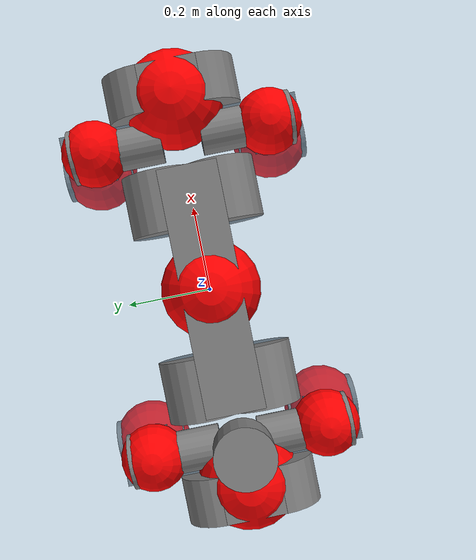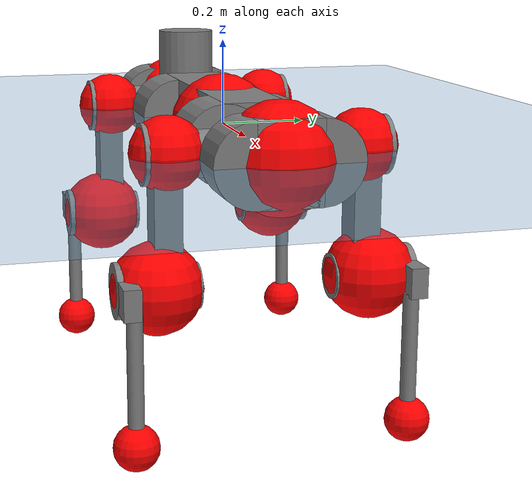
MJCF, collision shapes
<mujoco model="anymal_c">
  <compiler angle="radian" assetdir="assets" balanceinertia="true" inertiafromgeom="false"/>

  <option timestep="0.005" density="1.2" viscosity="2e-05"/>

  <size nkey="1"/>

  <visual>
    <quality shadowsize="8192"/>
    <map shadowclip="0.5"/>
  </visual>

  <default>
    <default class="/">
      <material specular="0" shininess="0.25"/>
      <geom contype="0" conaffinity="0" group="1" solref="-1000 -80"/>
      <site size="0.01 0.005 0.005" group="5"/>
      <general forcelimited="true" forcerange="-80 80" biastype="affine" gainprm="80" biasprm="0 -80 -2"/>
      <default class="anymal_c">
        <joint armature="0.01" damping="0.01" frictionloss="0.1"/>
        <default class="visual">
          <geom type="mesh" group="2"/>
          <default class="visual_zflip"/>
        </default>
        <default class="collision">
          <geom type="cylinder" group="3"/>
          <default class="foot">
            <geom size="0.03 0 0" type="sphere" condim="6" priority="1" friction="0.8 0.02 0.01" solimp="0.015 1 0.03"/>
          </default>
        </default>
      </default>
      <default class="reward_collision_sphere">
        <geom group="5" rgba="1 0 0 1"/>
      </default>
    </default>
  </default>

  <asset>
    <texture type="skybox" colorspace="auto" name="//unnamed_texture_0" builtin="gradient" rgb1="0.95 0.95 0.95" rgb2="0.95 0.95 0.95" width="100" height="600"/>
    <texture type="2d" colorspace="auto" name="texplane" builtin="checker" rgb1="0.345 0.575 0.748" rgb2="0.345 0.575 0.748" markrgb="1 1 1" width="512" height="512"/>
    <texture type="2d" colorspace="linear" name="base" file="base.png"/>
    <texture type="2d" colorspace="linear" name="top_shell" file="top_shell.png"/>
    <texture type="2d" colorspace="linear" name="bottom_shell" file="bottom_shell.png"/>
    <texture type="2d" colorspace="linear" name="remote" file="remote.png"/>
    <texture type="2d" colorspace="linear" name="hatch" file="hatch.png"/>
    <texture type="2d" colorspace="linear" name="handle" file="handle.png"/>
    <texture type="2d" colorspace="linear" name="face" file="face.png"/>
    <texture type="2d" colorspace="linear" name="battery" file="battery.png"/>
    <texture type="2d" colorspace="linear" name="lidar_cage" file="lidar_cage.png"/>
    <texture type="2d" colorspace="linear" name="depth_camera" file="depth_camera.png"/>
    <texture type="2d" colorspace="linear" name="wide_angle_camera" file="wide_angle_camera.png"/>
    <texture type="2d" colorspace="linear" name="lidar" file="lidar.png"/>
    <texture type="2d" colorspace="linear" name="drive" file="drive.png"/>
    <texture type="2d" colorspace="linear" name="hip_l" file="hip_l.png"/>
    <texture type="2d" colorspace="linear" name="shank_l" file="shank_l.png"/>
    <texture type="2d" colorspace="linear" name="foot" file="foot.png"/>
    <texture type="2d" colorspace="linear" name="thigh" file="thigh.png"/>
    <texture type="2d" colorspace="linear" name="shank_r" file="shank_r.png"/>
    <texture type="2d" colorspace="linear" name="hip_r" file="hip_r.png"/>
    <material name="MatPlane" class="/" texture="texplane" texuniform="true" texrepeat="2 2" specular="0.9" shininess="0.5"/>
    <material name="black_plastic" class="/" rgba="0.007 0.007 0.007 1"/>
    <material name="green" class="/" rgba="0.052 0.178 0.033 1"/>
    <material name="red" class="/" rgba="0.178 0.006 0.005 1"/>
    <material name="yellow" class="/" rgba="0.178 0.119 0.006 1"/>
    <material name="lwl" class="/" rgba="0.8 0.8 0.8 1"/>
    <material name="base" class="/" texture="base"/>
    <material name="top_shell" class="/" texture="top_shell"/>
    <material name="bottom_shell" class="/" texture="bottom_shell"/>
    <material name="hip_l" class="/" texture="hip_l"/>
    <material name="thigh" class="/" texture="thigh"/>
    <material name="shank_l" class="/" texture="shank_l"/>
    <material name="foot" class="/" texture="foot"/>
    <material name="hip_r" class="/" texture="hip_r"/>
    <material name="shank" class="/" texture="shank_r"/>
    <material name="hatch" class="/" texture="hatch"/>
    <material name="remote" class="/" texture="remote"/>
    <material name="handle" class="/" texture="handle"/>
    <material name="face" class="/" texture="face"/>
    <material name="depth_camera" class="/" texture="depth_camera"/>
    <material name="wide_angle_camera" class="/" texture="wide_angle_camera"/>
    <material name="battery" class="/" texture="battery"/>
    <material name="lidar_cage" class="/" texture="lidar_cage"/>
    <material name="lidar" class="/" texture="lidar"/>
    <material name="drive" class="/" texture="drive"/>
    <mesh name="base_0" class="/" file="base_0.obj"/>
    <mesh name="base_1" class="/" file="base_1.obj"/>
    <mesh name="base_2" class="/" file="base_2.obj"/>
    <mesh name="base_3" class="/" file="base_3.obj"/>
    <mesh name="base_4" class="/" file="base_4.obj"/>
    <mesh name="base_5" class="/" file="base_5.obj"/>
    <mesh name="top_shell" class="/" file="top_shell.obj"/>
    <mesh name="bottom_shell" class="/" file="bottom_shell.obj"/>
    <mesh name="remote" class="/" file="remote.obj"/>
    <mesh name="handle" class="/" file="handle.obj"/>
    <mesh name="face" class="/" file="face.obj"/>
    <mesh name="wide_angle_camera" class="/" file="wide_angle_camera.obj"/>
    <mesh name="depth_camera" class="/" file="depth_camera.obj"/>
    <mesh name="battery" class="/" file="battery.obj"/>
    <mesh name="lidar_cage" class="/" file="lidar_cage.obj"/>
    <mesh name="lidar" class="/" file="lidar.obj"/>
    <mesh name="drive" class="/" file="drive.obj"/>
    <mesh name="hip_l" class="/" file="hip_l.obj"/>
    <mesh name="thigh" class="/" file="thigh.obj"/>
    <mesh name="shank_l" class="/" file="shank_l.obj"/>
    <mesh name="foot" class="/" file="foot.obj"/>
    <mesh name="hip_r" class="/" file="hip_r.obj"/>
    <mesh name="hatch" class="/" file="hatch.obj"/>
    <mesh name="shank_r" class="/" file="shank_r.obj"/>
  </asset>

  <worldbody>
    <geom name="floor" class="/" size="100 100 0.125" type="plane" group="0" material="MatPlane"/>
    <light name="toplight_shadow" class="/" pos="0 0 5" dir="0.0990148 0.0990148 -0.990148" type="directional" ambient="0.04 0.04 0.04" diffuse="0.55 0.55 0.55" specular="0.12 0.12 0.12"/>
    <light name="toplight_fill" class="/" pos="0 0 5" dir="0.0990148 0.0990148 -0.990148" type="directional" castshadow="false" ambient="0.04 0.04 0.04" diffuse="0.3 0.3 0.3" specular="0.08 0.08 0.08"/>
    <body name="trunk" childclass="anymal_c" pos="-0.000309613 -0.00281909 -0.000871543" quat="0.999999 -0.000320766 -0.00137196 -8.78943e-05">
      <inertial pos="-0.000288691 -0.00158308 0.0523774" quat="0.490123 0.502035 0.507565 0.500117" mass="20.3799" diaginertia="0.73952 0.61044 0.236108"/>
      <joint name="//unnamed_joint_0" type="free" armature="0" damping="0" frictionloss="0"/>
      <geom name="//unnamed_geom_1" class="visual" material="green" mesh="base_0"/>
      <geom name="//unnamed_geom_2" class="visual" material="yellow" mesh="base_1"/>
      <geom name="//unnamed_geom_3" class="visual" material="red" mesh="base_2"/>
      <geom name="//unnamed_geom_4" class="visual" material="black_plastic" mesh="base_3"/>
      <geom name="//unnamed_geom_5" class="visual" material="lwl" mesh="base_4"/>
      <geom name="//unnamed_geom_6" class="visual" material="base" mesh="base_5"/>
      <geom name="trunk_1" class="collision" size="0.294399 0.0710617 0.0913651" type="box"/>
      <geom name="trunk_2" class="collision" size="0.0913651 0.0735997" pos="0.22555 0.0696484 0" quat="0.707107 0 0.707107 0"/>
      <geom name="trunk_3" class="collision" size="0.0913651 0.0735997" pos="-0.22555 0.0696484 0" quat="0.707107 0 0.707107 0"/>
      <geom name="trunk_4" class="collision" size="0.0913651 0.0735997" pos="0.22555 -0.0696484 0" quat="0.707107 0 0.707107 0"/>
      <geom name="trunk_5" class="collision" size="0.0913651 0.0735997" pos="-0.22555 -0.0696484 0" quat="0.707107 0 0.707107 0"/>
      <geom name="//unnamed_geom_12" class="visual" material="top_shell" mesh="top_shell"/>
      <geom name="//unnamed_geom_13" class="visual" material="bottom_shell" mesh="bottom_shell"/>
      <geom name="//unnamed_geom_14" class="visual" material="remote" mesh="remote"/>
      <geom name="//unnamed_geom_15" class="visual" material="handle" mesh="handle"/>
      <geom name="//unnamed_geom_16" class="visual" pos="0.429841 0 0" quat="1 0 0 0" material="face" mesh="face"/>
      <geom name="trunk_6" class="collision" size="0.0558342 0.0710617 0.0913651" pos="0.486877 0 0" type="box"/>
      <geom name="//unnamed_geom_18" class="collision" size="0.0913651 0.0558342" pos="0.486877 0.0696484 0" quat="0.707107 0 0.707107 0"/>
      <geom name="//unnamed_geom_19" class="collision" size="0.0913651 0.0558342" pos="0.486877 -0.0696484 0" quat="0.707107 0 0.707107 0"/>
      <geom name="//unnamed_geom_20" class="visual" pos="0.478735 0 -0.029416" quat="0.965926 0 0.258819 0" material="depth_camera" mesh="depth_camera"/>
      <geom name="//unnamed_geom_21" class="visual" pos="0.531987 0 0.0151723" material="wide_angle_camera" mesh="wide_angle_camera"/>
      <geom name="//unnamed_geom_22" class="visual_zflip" pos="-0.429841 0 0" quat="0 0 0 1" material="face" mesh="face"/>
      <geom name="trunk_7" class="collision" size="0.0558342 0.0710617 0.0913651" pos="-0.486877 0 0" quat="0 0 0 1" type="box"/>
      <geom name="//unnamed_geom_24" class="collision" size="0.0913651 0.0558342" pos="-0.486877 -0.0696484 0" quat="0 -0.707107 0 0.707107"/>
      <geom name="//unnamed_geom_25" class="collision" size="0.0913651 0.0558342" pos="-0.486877 0.0696484 0" quat="0 -0.707107 0 0.707107"/>
      <geom name="//unnamed_geom_26" class="visual" pos="-0.478735 0 -0.029416" quat="0 -0.258819 0 0.965926" material="depth_camera" mesh="depth_camera"/>
      <geom name="//unnamed_geom_27" class="visual_zflip" pos="-0.531987 0 0.0151723" quat="0 0 0 1" material="wide_angle_camera" mesh="wide_angle_camera"/>
      <geom name="//unnamed_geom_28" class="visual" material="battery" mesh="battery"/>
      <geom name="//unnamed_geom_29" class="visual" pos="0 0.0755234 0.0296212" quat="0.683013 -0.183013 0.183013 0.683013" material="depth_camera" mesh="depth_camera"/>
      <geom name="//unnamed_geom_30" class="visual" pos="0 -0.0755234 0.0296212" quat="0.683013 0.183013 0.183013 -0.683013" material="depth_camera" mesh="depth_camera"/>
      <geom name="//unnamed_geom_31" class="visual" pos="-0.377472 0 0.0744933" quat="1 0 0 0" material="lidar_cage" mesh="lidar_cage"/>
      <geom name="trunk_8" class="collision" size="0.0710617 0.0609101" pos="-0.377472 0 0.135304"/>
      <geom name="//unnamed_geom_33" class="visual" pos="-0.377472 -1.65143e-05 0.144122" quat="0.707107 0 0 -0.707107" material="lidar" mesh="lidar"/>
      <geom name="//unnamed_geom_34" class="visual" pos="0.311 0.103484 -3.19774e-10" quat="0.258819 0.965926 0 0" material="drive" mesh="drive"/>
      <geom name="//unnamed_geom_35" class="visual" pos="0.311 -0.103484 3.19774e-10" quat="0.258819 -0.965926 0 0" material="drive" mesh="drive"/>
      <geom name="//unnamed_geom_36" class="visual" pos="-0.311 0.103484 3.19774e-10" quat="0 0 0.965926 -0.258819" material="drive" mesh="drive"/>
      <geom name="//unnamed_geom_37" class="visual" pos="-0.311 -0.103484 -3.19774e-10" quat="0 0 -0.965926 -0.258819" material="drive" mesh="drive"/>
      <geom name="//unnamed_geom_38" class="visual" pos="0.120293 0 0.0739866" quat="1 0 0 0" material="hatch" mesh="hatch"/>
      <geom name="//unnamed_geom_39" class="reward_collision_sphere" size="0.12182"/>
      <geom name="//unnamed_geom_40" class="reward_collision_sphere" size="0.12182" pos="0.466655 0 0"/>
      <geom name="//unnamed_geom_41" class="reward_collision_sphere" size="0.12182" pos="-0.466655 0 0"/>
      <site name="imu" pos="0.263301 0.00441149 0.0430719" size="0.0101517"/>
      <camera name="track" pos="0 -1.98995 0" quat="0.707107 0.707107 0 0" mode="trackcom"/>
      <camera name="ego_camera" pos="0.466655 0 -0.0405406" quat="-0.5 -0.5 0.5 0.5"/>
      <body name="LF_HIP" pos="0.310177 0.103958 0.00136586" quat="0.258465 0.966021 0.00039848 -0.000158565">
        <inertial pos="0.0587128 -0.0176647 -0.0078867" quat="-0.12699 0.713144 -0.134286 0.676215" mass="2.89727" diaginertia="0.00707616 0.00465218 0.00353364"/>
        <joint name="LF_HAA" pos="0 0 0" axis="0.999943 -0.00717051 -0.00791597" stiffness="0.0064939" range="-0.76724 0.500515" armature="0.0104054" damping="0.00695841" frictionloss="0.0988841"/>
        <geom name="//unnamed_geom_42" class="visual" pos="0 -1.88109e-05 3.08967e-06" quat="0.258819 -0.965926 0 0" material="hip_l" mesh="hip_l"/>
        <geom name="//unnamed_geom_43" class="visual" pos="0.062117 -0.0747211 -0.0432774" quat="0.183013 -0.683013 0.683013 0.183013" material="drive" mesh="drive"/>
        <geom name="//unnamed_geom_44" class="collision" size="0.0507584 0.0710617" pos="0.062117 -0.0118997 -0.00699832" quat="-0.353553 -0.612372 0.612372 -0.353553"/>
        <body name="LF_THIGH" pos="0.0650403 -0.0699611 -0.0414993" quat="0.183258 -0.68309 0.682721 0.183566">
          <inertial pos="0.0317352 0.00145429 -0.248225" quat="0.992253 -0.0076597 -0.0880931 0.0872587" mass="3.3319" diaginertia="0.0354162 0.0299646 0.00449302"/>
          <joint name="LF_HFE" pos="0 0 0" axis="0.999895 -0.00981928 0.0106541" stiffness="0.0104853" range="-3.20084 3.09728" armature="0.0108978" damping="0.00303914" frictionloss="0.0885529"/>
          <geom name="//unnamed_geom_45" class="visual" pos="0.000836327 1.31786e-06 0" quat="0.707107 0 0 -0.707107" material="thigh" mesh="thigh"/>
          <geom name="//unnamed_geom_46" class="collision" size="0.0659859 0.0406067" pos="0.0414805 0 0" quat="0.5 0.5 -0.5 -0.5"/>
          <geom name="//unnamed_geom_47" class="collision" size="0.0380688 0.030455 0.143457" pos="0.0311104 0 -0.143224" quat="0.707107 0 0 -0.707107" type="box"/>
          <geom name="//unnamed_geom_48" class="visual" pos="0.104012 0 -0.288852" quat="1 0 0 0" material="drive" mesh="drive"/>
          <geom name="//unnamed_geom_49" class="collision" size="0.0507584 0.0710617" pos="0.0314215 0 -0.288852" quat="0.707107 0 0.707107 0"/>
          <geom name="//unnamed_geom_50" class="reward_collision_sphere" size="0.0812134" pos="0.0259253 0 0"/>
          <body name="LF_SHANK" pos="0.103645 -0.000388057 -0.287144" quat="1 0.000324935 9.77561e-05 0.000474841">
            <inertial pos="0.0032894 -0.0636331 -0.0844923" quat="0.992469 -0.119904 0.00428112 -0.0247028" mass="0.603123" diaginertia="0.0117221 0.00892552 0.00117082"/>
            <joint name="LF_KFE" pos="0 0 0" axis="0.999994 0.00145015 -0.00315251" stiffness="0.0073686" range="-3.11195 3.19479" armature="0.00877322" damping="0" frictionloss="0.106821"/>
            <geom name="//unnamed_geom_51" class="visual" pos="0.000272708 0.00145409 0" quat="0.707107 0 0 -0.707107" material="shank_l" mesh="shank_l"/>
            <geom name="LF_kfe_act" class="collision" size="0.0609101 0.0203034" pos="0.0207402 0 0" quat="0.5 0.5 -0.5 -0.5"/>
            <geom name="//unnamed_geom_53" class="collision" size="0.0583711 0.0342619 0.0192882" pos="0.0207402 -0.0572102 0" quat="0.5 0.5 -0.5 -0.5" type="box"/>
            <geom name="//unnamed_geom_54" class="visual" pos="0.0135329 -0.0870396 -0.342537" quat="0.382683 0 0 -0.92388" material="foot" mesh="foot"/>
            <geom name="LF_calf" class="collision" size="0.0177654 0.143394" pos="0.013533 -0.0875082 -0.171269" quat="0.707107 0 0 -0.707107"/>
            <geom name="LF_foot" class="foot" size="0.0288051" pos="0.013533 -0.0875082 -0.319733" quat="0.707107 0 0 -0.707107"/>
            <geom name="//unnamed_geom_57" class="reward_collision_sphere" size="0.101517" pos="-0.0518506 0 0"/>
            <geom name="//unnamed_geom_58" class="reward_collision_sphere" size="0.0507584" pos="0.013533 -0.0875082 -0.319733"/>
            <site name="LF_foot" class="foot" pos="0.013533 -0.0875082 -0.319733" quat="0.707107 0 0 -0.707107" size="0.0101517"/>
          </body>
        </body>
      </body>
      <body name="RF_HIP" pos="0.309727 -0.106228 0.000191177" quat="0.258729 -0.96595 0.000237962 4.15072e-05">
        <inertial pos="0.0598382 0.0174841 -0.0103947" quat="0.127622 0.685817 0.126885 0.705172" mass="2.86" diaginertia="0.00679463 0.00480509 0.00358326"/>
        <joint name="RF_HAA" pos="0 0 0" axis="0.999888 0.00584248 0.0137967" range="-0.512509 0.772134" armature="0.00912254" damping="0.00171093" frictionloss="0.104519"/>
        <geom name="//unnamed_geom_59" class="visual" pos="0 1.88107e-05 3.08966e-06" quat="0.258819 0.965926 0 0" material="hip_r" mesh="hip_r"/>
        <geom name="//unnamed_geom_60" class="visual" pos="0.062117 0.0747211 -0.0432774" quat="0.183013 0.683013 0.683013 -0.183013" material="drive" mesh="drive"/>
        <geom name="//unnamed_geom_61" class="collision" size="0.0507584 0.0710617" pos="0.062117 0.0118997 -0.00699832" quat="-0.353553 0.612372 0.612372 0.353553"/>
        <body name="RF_THIGH" pos="0.0607404 0.0715943 -0.0438359" quat="0.183013 0.683013 0.683013 -0.183013">
          <inertial pos="0.034418 -0.00289061 -0.246835" quat="0.993438 -0.00254989 -0.0785095 0.083126" mass="3.2466" diaginertia="0.035081 0.029183 0.00447984"/>
          <joint name="RF_HFE" pos="0 0 0" axis="0.999955 -0.000826434 0.00948915" stiffness="0.00492483" range="-3.1425 3.16483" armature="0.00906873" damping="0.0226652" frictionloss="0.0875909"/>
          <geom name="//unnamed_geom_62" class="visual" pos="0.000836327 1.31786e-06 0" quat="0.707107 0 0 -0.707107" material="thigh" mesh="thigh"/>
          <geom name="//unnamed_geom_63" class="collision" size="0.0659859 0.0406067" pos="0.0414805 0 0" quat="0.5 0.5 0.5 0.5"/>
          <geom name="//unnamed_geom_64" class="collision" size="0.0380688 0.030455 0.143457" pos="0.0311104 0 -0.143224" quat="0.707107 0 0 0.707107" type="box"/>
          <geom name="//unnamed_geom_65" class="visual" pos="0.104012 0 -0.288852" quat="1 0 0 0" material="drive" mesh="drive"/>
          <geom name="//unnamed_geom_66" class="collision" size="0.0507584 0.0710617" pos="0.0314215 0 -0.288852" quat="0.707107 0 0.707107 0"/>
          <geom name="//unnamed_geom_67" class="reward_collision_sphere" size="0.0812134" pos="0.0259253 0 0"/>
          <body name="RF_SHANK" pos="0.102993 0.00255186 -0.287777" quat="1 1.8441e-05 6.8042e-05 9.04121e-05">
            <inertial pos="0.00309895 0.0637623 -0.0821997" quat="0.991988 0.122185 -0.00175453 0.0320625" mass="0.626504" diaginertia="0.0121651 0.0094998 0.00117771"/>
            <joint name="RF_KFE" pos="0 0 0" axis="0.999994 0.00227914 -0.00279059" stiffness="0.000112216" range="-3.10165 3.14478" armature="0.0105638" damping="0.000685059" frictionloss="0.0942751"/>
            <geom name="//unnamed_geom_68" class="visual" pos="0.000272706 -0.00145409 0" quat="0.707107 0 0 0.707107" material="shank" mesh="shank_r"/>
            <geom name="RF_kfe_act" class="collision" size="0.0609101 0.0203034" pos="0.0207402 0 0" quat="0.5 0.5 0.5 0.5"/>
            <geom name="//unnamed_geom_70" class="collision" size="0.0583711 0.0342619 0.0192882" pos="0.0207402 0.0572102 0" quat="0.5 0.5 0.5 0.5" type="box"/>
            <geom name="//unnamed_geom_71" class="visual" pos="0.0135331 0.0870396 -0.342537" quat="0.382683 0 0 0.92388" material="foot" mesh="foot"/>
            <geom name="RF_calf" class="collision" size="0.0177654 0.143394" pos="0.013533 0.0875082 -0.171269" quat="0.707107 0 0 0.707107"/>
            <geom name="RF_foot" class="foot" size="0.0295311" pos="0.013533 0.0875082 -0.319733" quat="0.707107 0 0 0.707107"/>
            <geom name="//unnamed_geom_74" class="reward_collision_sphere" size="0.101517" pos="-0.0518506 0 0"/>
            <geom name="//unnamed_geom_75" class="reward_collision_sphere" size="0.0507584" pos="0.013533 0.0875082 -0.319733"/>
            <site name="RF_foot" class="foot" pos="0.013533 0.0875082 -0.319733" quat="0.707107 0 0 0.707107" size="0.0101517"/>
          </body>
        </body>
      </body>
      <body name="LH_HIP" pos="-0.310646 0.106377 0.00357684" quat="0.000407796 0.000271604 0.965998 -0.25855">
        <inertial pos="0.0585314 0.0150071 -0.00581927" quat="0.135286 0.679053 0.128015 0.710068" mass="2.80373" diaginertia="0.00691873 0.00456476 0.00355958"/>
        <joint name="LH_HAA" pos="0 0 0" axis="0.99998 -0.00245836 -0.00578807" stiffness="0.00828827" range="-0.441228 0.699165" armature="0.010204" damping="0.0117514" frictionloss="0.115724"/>
        <geom name="//unnamed_geom_76" class="visual" pos="0 1.88107e-05 3.08966e-06" quat="-0.258819 -0.965926 0 0" material="hip_r" mesh="hip_r"/>
        <geom name="//unnamed_geom_77" class="visual" pos="0.062117 0.0747211 -0.0432774" quat="0.183013 0.683013 0.683013 -0.183013" material="drive" mesh="drive"/>
        <geom name="//unnamed_geom_78" class="collision" size="0.0507584 0.0710617" pos="0.062117 0.0118997 -0.00699832" quat="-0.353553 0.612372 0.612372 0.353553"/>
        <body name="LH_THIGH" pos="0.0615923 0.0702139 -0.0424206" quat="0.182246 0.683576 0.682583 -0.183278">
          <inertial pos="0.0315676 0.001019 -0.247531" quat="0.992773 0.00293822 -0.0719255 0.0960169" mass="3.15482" diaginertia="0.0352404 0.0301938 0.00462271"/>
          <joint name="LH_HFE" pos="0 0 0" axis="0.999982 -0.00516668 0.00316907" range="-3.12269 3.15156" armature="0.0115622" damping="0.0240326" frictionloss="0.0884474"/>
          <geom name="//unnamed_geom_79" class="visual" pos="0.000836327 1.31786e-06 0" quat="0.707107 0 0 -0.707107" material="thigh" mesh="thigh"/>
          <geom name="//unnamed_geom_80" class="collision" size="0.0659859 0.0406067" pos="0.0414805 0 0" quat="0.5 0.5 -0.5 -0.5"/>
          <geom name="//unnamed_geom_81" class="collision" size="0.0380688 0.030455 0.143457" pos="0.0311104 0 -0.143224" quat="0.707107 0 0 -0.707107" type="box"/>
          <geom name="//unnamed_geom_82" class="visual" pos="0.104012 0 -0.288852" quat="1 0 0 0" material="drive" mesh="drive"/>
          <geom name="//unnamed_geom_83" class="collision" size="0.0507584 0.0710617" pos="0.0314215 0 -0.288852" quat="0.707107 0 0.707107 0"/>
          <geom name="//unnamed_geom_84" class="reward_collision_sphere" size="0.0812134" pos="0.0259253 0 0"/>
          <body name="LH_SHANK" pos="0.102438 0.00152849 -0.286055" quat="0.999999 -0.000472075 -0.000893707 0.000283222">
            <inertial pos="0.00615101 0.0635249 -0.0805877" quat="0.992676 0.118512 0.00181056 0.0233456" mass="0.60362" diaginertia="0.0116484 0.00860997 0.00114485"/>
            <joint name="LH_KFE" pos="0 0 0" axis="0.999991 0.00434986 0.000196678" stiffness="0.00803045" range="-3.10924 3.14974" armature="0.0108569" damping="0.0217864" frictionloss="0.087389"/>
            <geom name="//unnamed_geom_85" class="visual" pos="0.000272706 -0.00145409 0" quat="-0.707107 0 0 -0.707107" material="shank" mesh="shank_r"/>
            <geom name="LH_kfe_act" class="collision" size="0.0609101 0.0203034" pos="0.0207402 0 0" quat="0.5 0.5 -0.5 -0.5"/>
            <geom name="//unnamed_geom_87" class="collision" size="0.0583711 0.0342619 0.0192882" pos="0.0207402 0.0572102 0" quat="0.5 0.5 -0.5 -0.5" type="box"/>
            <geom name="//unnamed_geom_88" class="visual" pos="0.0135331 0.0870396 -0.342537" quat="-0.382683 0 0 -0.92388" material="foot" mesh="foot"/>
            <geom name="LH_calf" class="collision" size="0.0177654 0.143394" pos="0.013533 0.0875082 -0.171269" quat="0.707107 0 0 -0.707107"/>
            <geom name="LH_foot" class="foot" size="0.0304166" pos="0.013533 0.0875082 -0.319733" quat="0.707107 0 0 -0.707107"/>
            <geom name="//unnamed_geom_91" class="reward_collision_sphere" size="0.101517" pos="-0.0518506 0 0"/>
            <geom name="//unnamed_geom_92" class="reward_collision_sphere" size="0.0507584" pos="0.013533 0.0875082 -0.319733"/>
            <site name="LH_foot" class="foot" pos="0.013533 0.0875082 -0.319733" quat="0.707107 0 0 -0.707107" size="0.0101517"/>
          </body>
        </body>
      </body>
      <body name="RH_HIP" pos="-0.312448 -0.101854 0.00133439" quat="-0.000286147 0.000489392 -0.965835 -0.259157">
        <inertial pos="0.0580271 -0.0161391 -0.00768465" quat="-0.126222 0.709597 -0.13693 0.679552" mass="2.83525" diaginertia="0.00683622 0.00470597 0.00346052"/>
        <joint name="RH_HAA" pos="0 0 0" axis="0.99999 -0.00396172 0.00214824" stiffness="0.00898863" range="-0.718763 0.549239" armature="0.0112705" damping="0.012718" frictionloss="0.115397"/>
        <geom name="//unnamed_geom_93" class="visual" pos="0 -1.88109e-05 3.08967e-06" quat="-0.258819 0.965926 0 0" material="hip_l" mesh="hip_l"/>
        <geom name="//unnamed_geom_94" class="visual" pos="0.062117 -0.0747211 -0.0432774" quat="-0.183013 0.683013 -0.683013 -0.183013" material="drive" mesh="drive"/>
        <geom name="//unnamed_geom_95" class="collision" size="0.0507584 0.0710617" pos="0.062117 -0.0118997 -0.00699832" quat="0.353553 0.612372 -0.612372 0.353553"/>
        <body name="RH_THIGH" pos="0.0591146 -0.0689203 -0.0430648" quat="-0.183209 0.683101 -0.682698 -0.183663">
          <inertial pos="0.0327296 -0.00286728 -0.247961" quat="0.993477 -0.00809655 -0.0784812 0.0823344" mass="3.24304" diaginertia="0.0367545 0.0289143 0.00431813"/>
          <joint name="RH_HFE" pos="0 0 0" axis="0.999979 0.0026947 -0.0059538" stiffness="0.0104129" range="-3.15912 3.16681" armature="0.00929842" damping="0.0211717" frictionloss="0.10631"/>
          <geom name="//unnamed_geom_96" class="visual" pos="0.000836327 1.31786e-06 0" quat="0.707107 0 0 -0.707107" material="thigh" mesh="thigh"/>
          <geom name="//unnamed_geom_97" class="collision" size="0.0659859 0.0406067" pos="0.0414805 0 0" quat="0.5 0.5 0.5 0.5"/>
          <geom name="//unnamed_geom_98" class="collision" size="0.0380688 0.030455 0.143457" pos="0.0311104 0 -0.143224" quat="0.707107 0 0 0.707107" type="box"/>
          <geom name="//unnamed_geom_99" class="visual" pos="0.104012 0 -0.288852" quat="1 0 0 0" material="drive" mesh="drive"/>
          <geom name="//unnamed_geom_100" class="collision" size="0.0507584 0.0710617" pos="0.0314215 0 -0.288852" quat="0.707107 0 0.707107 0"/>
          <geom name="//unnamed_geom_101" class="reward_collision_sphere" size="0.0812134" pos="0.0259253 0 0"/>
          <body name="RH_SHANK" pos="0.106178 0.00142036 -0.287381" quat="1 -8.17266e-05 1.12276e-05 0.000220041">
            <inertial pos="0.00315447 -0.0615616 -0.0823989" quat="0.993029 -0.115399 -0.0013594 -0.0239859" mass="0.635124" diaginertia="0.0122427 0.00923342 0.00120868"/>
            <joint name="RH_KFE" pos="0 0 0" axis="0.999959 -0.00580862 0.00690893" range="-3.0865 3.17912" armature="0.0106068" damping="0.0133192" frictionloss="0.114419"/>
            <geom name="//unnamed_geom_102" class="visual" pos="0.000272708 0.00145409 0" quat="0.707107 0 0 -0.707107" material="shank_l" mesh="shank_l"/>
            <geom name="RH_kfe_act" class="collision" size="0.0609101 0.0203034" pos="0.0207402 0 0" quat="0.5 0.5 0.5 0.5"/>
            <geom name="//unnamed_geom_104" class="collision" size="0.0583711 0.0342619 0.0192882" pos="0.0207402 -0.0572102 0" quat="0.5 0.5 0.5 0.5" type="box"/>
            <geom name="//unnamed_geom_105" class="visual" pos="0.0135329 -0.0870396 -0.342537" quat="0.382683 0 0 -0.92388" material="foot" mesh="foot"/>
            <geom name="RH_calf" class="collision" size="0.0177654 0.143394" pos="0.013533 -0.0875082 -0.171269" quat="0.707107 0 0 0.707107"/>
            <geom name="RH_foot" class="foot" size="0.0310783" pos="0.013533 -0.0875082 -0.319733" quat="0.707107 0 0 0.707107"/>
            <geom name="//unnamed_geom_108" class="reward_collision_sphere" size="0.101517" pos="-0.0518506 0 0"/>
            <geom name="//unnamed_geom_109" class="reward_collision_sphere" size="0.0507584" pos="0.013533 -0.0875082 -0.319733"/>
            <site name="RH_foot" class="foot" pos="0.013533 -0.0875082 -0.319733" quat="0.707107 0 0 0.707107" size="0.0101517"/>
          </body>
        </body>
      </body>
    </body>
  </worldbody>

  <contact>
    <pair class="/" geom1="floor" geom2="LF_foot" name="//unnamed_contact_0"/>
    <pair class="/" geom1="floor" geom2="RF_foot" name="//unnamed_contact_1"/>
    <pair class="/" geom1="floor" geom2="LH_foot" name="//unnamed_contact_2"/>
    <pair class="/" geom1="floor" geom2="RH_foot" name="//unnamed_contact_3"/>
  </contact>

  <actuator>
    <general name="LF_HAA" class="/" joint="LF_HAA" forcerange="-89.4318 89.4318" gainprm="81.5424" biasprm="0 -81.5424 -2.16957"/>
    <general name="LF_HFE" class="/" joint="LF_HFE" forcerange="-81.215 81.215" gainprm="81.5424" biasprm="0 -81.5424 -2.16957"/>
    <general name="LF_KFE" class="/" joint="LF_KFE" forcerange="-78.0172 78.0172" gainprm="81.5424" biasprm="0 -81.5424 -2.16957"/>
    <general name="RF_HAA" class="/" joint="RF_HAA" forcerange="-74.6349 74.6349" gainprm="81.5424" biasprm="0 -81.5424 -2.16957"/>
    <general name="RF_HFE" class="/" joint="RF_HFE" forcerange="-81.2919 81.2919" gainprm="81.5424" biasprm="0 -81.5424 -2.16957"/>
    <general name="RF_KFE" class="/" joint="RF_KFE" forcerange="-72.8064 72.8064" gainprm="81.5424" biasprm="0 -81.5424 -2.16957"/>
    <general name="LH_HAA" class="/" joint="LH_HAA" forcerange="-79.9818 79.9818" gainprm="81.5424" biasprm="0 -81.5424 -2.16957"/>
    <general name="LH_HFE" class="/" joint="LH_HFE" forcerange="-81.3436 81.3436" gainprm="81.5424" biasprm="0 -81.5424 -2.16957"/>
    <general name="LH_KFE" class="/" joint="LH_KFE" forcerange="-85.6147 85.6147" gainprm="81.5424" biasprm="0 -81.5424 -2.16957"/>
    <general name="RH_HAA" class="/" joint="RH_HAA" forcerange="-75.4402 75.4402" gainprm="81.5424" biasprm="0 -81.5424 -2.16957"/>
    <general name="RH_HFE" class="/" joint="RH_HFE" forcerange="-86.4818 86.4818" gainprm="81.5424" biasprm="0 -81.5424 -2.16957"/>
    <general name="RH_KFE" class="/" joint="RH_KFE" forcerange="-88.4861 88.4861" gainprm="81.5424" biasprm="0 -81.5424 -2.16957"/>
  </actuator>

  <sensor>
    <gyro site="imu" name="imu_angular_velocity"/>
    <velocimeter site="imu" name="imu_linear_velocity"/>
    <framelinvel objtype="site" objname="LF_foot" name="LF_foot_global_linear_velocity"/>
    <framelinvel objtype="site" objname="RF_foot" name="RF_foot_global_linear_velocity"/>
    <framelinvel objtype="site" objname="LH_foot" name="LH_foot_global_linear_velocity"/>
    <framelinvel objtype="site" objname="RH_foot" name="RH_foot_global_linear_velocity"/>
  </sensor>

  <keyframe>
    <key name="home" qpos="0 0 0.55 1 0 0 0 0 0.4 -0.8 0 -0.4 0.8 0 -0.4 0.8 0 0.4 -0.8"/>
  </keyframe>
</mujoco>
